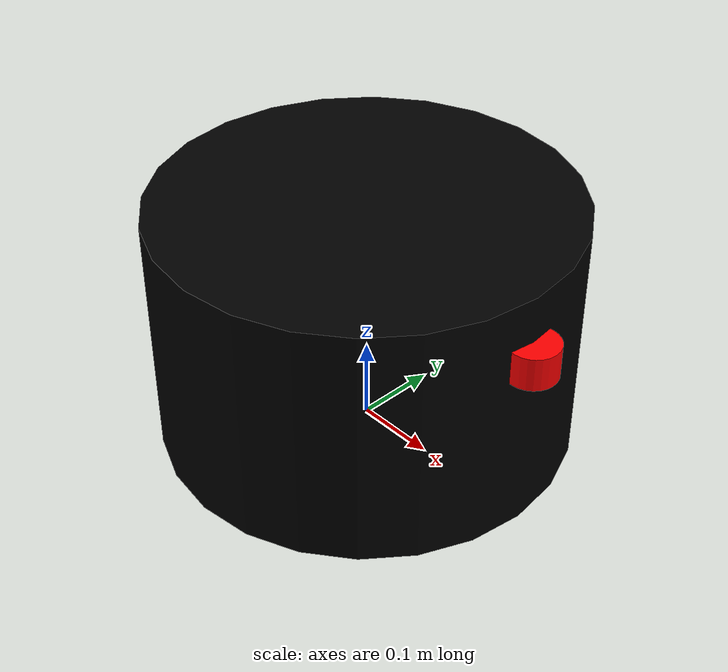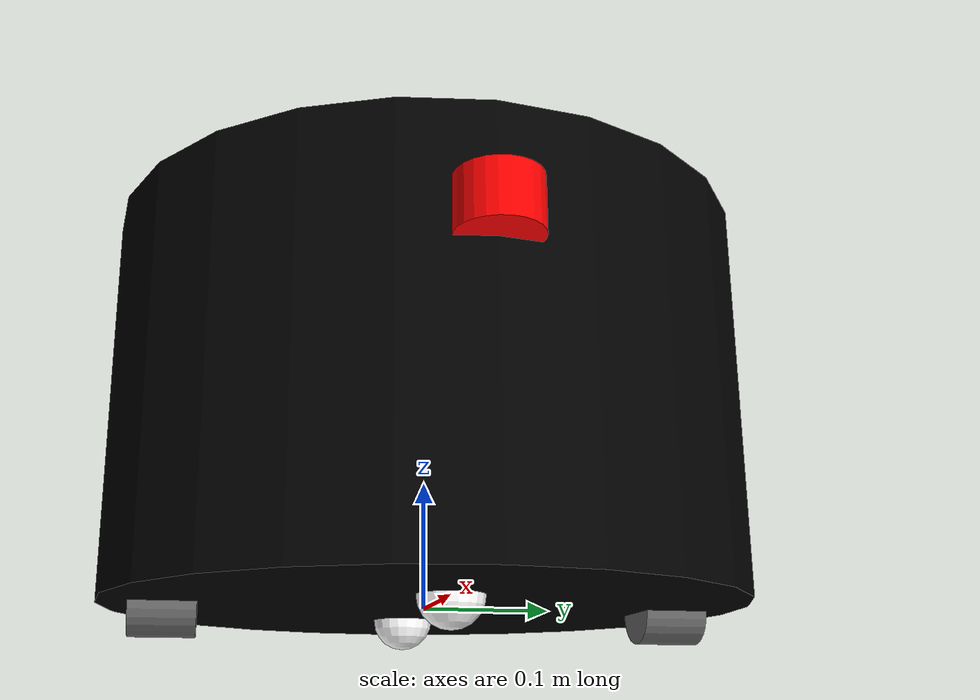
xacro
<?xml version="1.0"?>
<robot name="rb1_robot" xmlns:xacro="http://www.ros.org/wiki/xacro">

    <!-- Include Gazebo-specific properties -->
    <xacro:include filename="$(find my_rb1_description)/urdf/my_rb1_robot.gazebo" />

    <!--All units in m-kg-s-radians unit system -->
    <xacro:property name="PI" value="3.1415926535897931" />

    <!-- Main Body-base -->
    <xacro:property name="base_height" value="0.30" />
    <xacro:property name="base_radius" value="0.25" />
    <xacro:property name="base_mass" value="19" />

    <!-- Wheels -->
    <xacro:property name="wheel_radius" value="0.025" />
    <xacro:property name="wheel_height" value="0.05" />
    <xacro:property name="wheel_mass" value="1.0" />

    <!-- Casters -->
    <xacro:property name="caster_radius" value="0.025" />
    <xacro:property name="caster_mass" value="1.5" />

    <!-- Laser -->
    <xacro:property name="laser_radius" value="0.03" />
    <xacro:property name="laser_height" value="0.04" />
    <xacro:property name="laser_mass" value="1.0" />

    <!-- BASE-FOOTPRINT -->
    <!-- base_footprint is a fictitious link(frame) that is on the ground right below base_link origin -->
    <link name="base_footprint">
        <inertial>
            <mass value="0.0001" />
            <origin xyz="0 0 0" />
            <inertia ixx="0.0001" ixy="0.0" ixz="0.0"
                     iyy="0.0001" iyz="0.0"
                     izz="0.0001" />
        </inertial>
    </link>

    <!-- BASE-FOOTPRINT TO BASE-LINK JOINT -->
    <joint name="base_footprint_joint" type="fixed">
        <origin xyz="0 0 0.15" rpy="0 0 0" />
        <parent link="base_footprint"/>
        <child link="base_link" />
    </joint>

    <!-- BASE-LINK -->
    <!--Actual body/chassis of the robot-->
    <link name="base_link">
        <inertial>
            <mass value="${base_mass}" />
            <origin xyz="0 0 0" />
            <!--The 3x3 rotational inertia matrix. -->
            <inertia ixx="0.4277" ixy="0" ixz="0" iyy="0.4277" iyz="0" izz="0.5781"/>
        </inertial>

        <visual>
            <origin xyz="0 0 0" rpy="0 0 0" />
            <geometry>
                <cylinder radius="${base_radius}" length="${base_height}"/>
            </geometry>
            <material name="Black">
                <color rgba="0.0 0.0 0.0 1.0"/>
            </material>
        </visual>

        <collision>
            <origin xyz="0 0 0" rpy="0 0 0" />
            <geometry>
                <cylinder radius="${base_radius}" length="${base_height}"/>
            </geometry>
        </collision>
    </link>

    <!-- LEFT WHEEL -->
    <link name="left_wheel">
        <inertial>
            <mass value="${wheel_mass}" />
            <origin xyz="0 0 0" rpy="0 0 0" />
            <inertia ixx="0.000365" ixy="0" ixz="0" iyy="0.000365" iyz="0" izz="0.0003125"/>
        </inertial>

        <visual>
            <origin xyz="0 0 0" rpy="${PI/2} 0 0" />
            <geometry>
                <cylinder radius="${wheel_radius}" length="${wheel_height}"/>
            </geometry>
            <material name="DarkGray">
                <color rgba="0.4 0.4 0.4 1.0"/>
            </material>
        </visual>

        <collision>
            <origin xyz="0 0 0" rpy="${PI/2} 0 0" />
            <geometry>
                <cylinder radius="${wheel_radius}" length="${wheel_height}"/>
            </geometry>
        </collision>
    </link>

    <joint name="left_wheel_joint" type="continuous">
        <origin xyz="0.0 0.2 -0.15" rpy="0 0 0" />
        <parent link="base_link"/>
        <child link="left_wheel" />
        <axis xyz="0 1 0" />
    </joint>

    <!-- RIGHT WHEEL -->
    <link name="right_wheel">
        <inertial>
            <mass value="${wheel_mass}" />
            <origin xyz="0 0 0" rpy="0 0 0" />
            <inertia ixx="0.000365" ixy="0" ixz="0" iyy="0.000365" iyz="0" izz="0.0003125"/>
        </inertial>

        <visual>
            <origin xyz="0 0 0" rpy="${PI/2} 0 0" />
            <geometry>
                <cylinder radius="${wheel_radius}" length="${wheel_height}"/>
            </geometry>
            <material name="DarkGray">
                <color rgba="0.4 0.4 0.4 1.0"/>
            </material>
        </visual>

        <collision>
            <origin xyz="0 0 0" rpy="${PI/2} 0 0" />
            <geometry>
                <cylinder radius="${wheel_radius}" length="${wheel_height}"/>
            </geometry>
        </collision>
    </link>

    <joint name="right_wheel_joint" type="continuous">
        <origin xyz="0.0 -0.2 -0.15" rpy="0 0 0" />
        <parent link="base_link"/>
        <child link="right_wheel" />
        <axis xyz="0 1 0" />
    </joint>

    <!-- FRONT CASTER -->
    <link name="front_caster">
        <inertial>
            <mass value="${caster_mass}" />
            <origin xyz="0 0 0" rpy="0 0 0" />
            <inertia ixx="0.000375" ixy="0" ixz="0" iyy="0.000375" iyz="0" izz="0.000375"/>
        </inertial>

        <visual>
            <origin xyz="0 0 0" rpy="0 0 0" />
            <geometry>
                <sphere radius="${caster_radius}"/>
            </geometry>
            <material name="White">
                <color rgba="1.0 1.0 1.0 1.0"/>
            </material>
        </visual>

        <collision>
            <origin xyz="0 0 0" rpy="0 0 0" />
            <geometry>
                <sphere radius="${caster_radius}"/>
            </geometry>
            <surface>
                <friction>
                    <ode>
                        <mu>0.0</mu>
                        <mu2>0.0</mu2>
                    </ode>
                </friction>
            </surface>
        </collision>
    </link>

    <joint name="front_caster_joint" type="fixed">
        <origin xyz="-0.1 0.0 -0.15" rpy="0 0 0" />
        <parent link="base_link"/>
        <child link="front_caster" />
    </joint>

    <!-- BACK CASTER -->
    <link name="back_caster">
        <inertial>
            <mass value="${caster_mass}" />
            <origin xyz="0 0 0" rpy="0 0 0" />
            <inertia ixx="0.000375" ixy="0" ixz="0" iyy="0.000375" iyz="0" izz="0.000375"/>
        </inertial>

        <visual>
            <origin xyz="0 0 0" rpy="0 0 0" />
            <geometry>
                <sphere radius="${caster_radius}"/>
            </geometry>
            <material name="White">
                <color rgba="1.0 1.0 1.0 1.0"/>
            </material>
        </visual>

        <collision>
            <origin xyz="0 0 0" rpy="0 0 0" />
            <geometry>
                <sphere radius="${caster_radius}"/>
            </geometry>
            <surface>
                <friction>
                    <ode>
                        <mu>0.0</mu>
                        <mu2>0.0</mu2>
                    </ode>
                </friction>
            </surface>
        </collision>
    </link>

    <joint name="back_caster_joint" type="fixed">
        <origin xyz="0.1 0.0 -0.15" rpy="0 0 0" />
        <parent link="base_link"/>
        <child link="back_caster" />
    </joint>

    <!-- LASER LINK -->
    <link name="front_laser">
        <inertial>
            <mass value="${laser_mass}" />
            <origin xyz="0 0 0" rpy="0 0 0" />
            <inertia ixx="0.000308" ixy="0" ixz="0" iyy="0.000308" iyz="0" izz="0.00045"/>
        </inertial>

        <visual>
            <origin xyz="0 0 0" rpy="0 0 0" />
            <geometry>
                <cylinder radius="${laser_radius}" length="${laser_height}"/>
            </geometry>
            <material name="Red">
                <color rgba="1.0 0.0 0.0 1.0"/>
            </material>
        </visual>

        <collision>
            <origin xyz="0 0 0" rpy="0 0 0" />
            <geometry>
                <cylinder radius="${laser_radius}" length="${laser_height}"/>
            </geometry>
        </collision>
    </link>

    <!-- LASER JOINT -->
    <joint name="laser_joint" type="fixed">
        <origin xyz="0.25 0.0 0.075" rpy="${PI} 0 0" />
        <parent link="base_link"/>
        <child link="front_laser" />
    </joint>

</robot>
